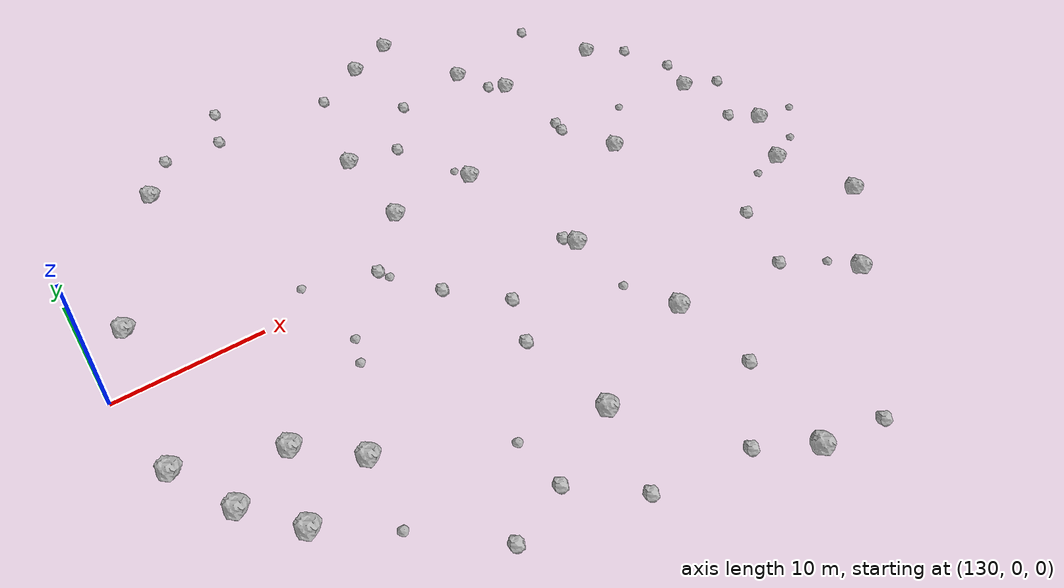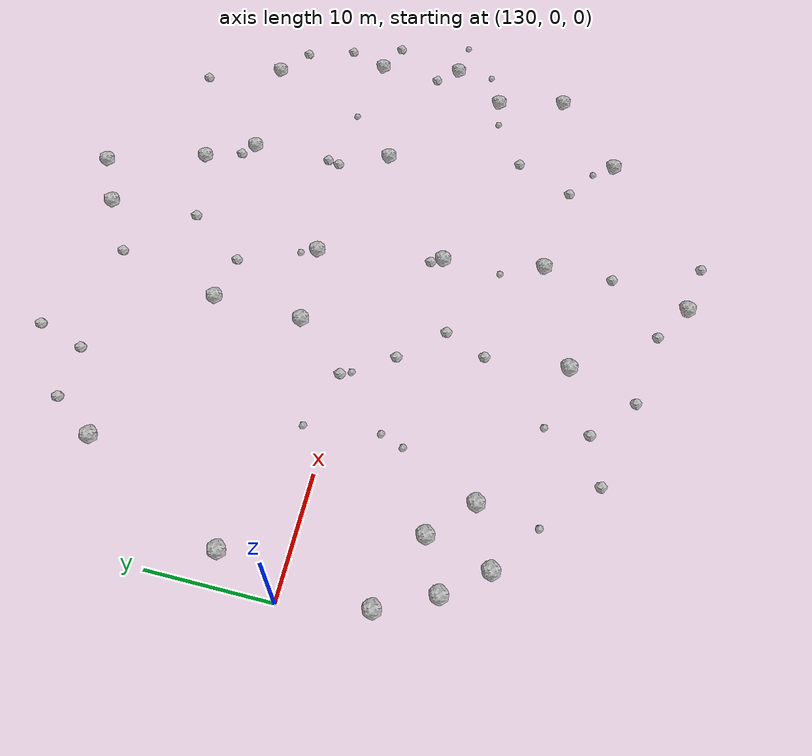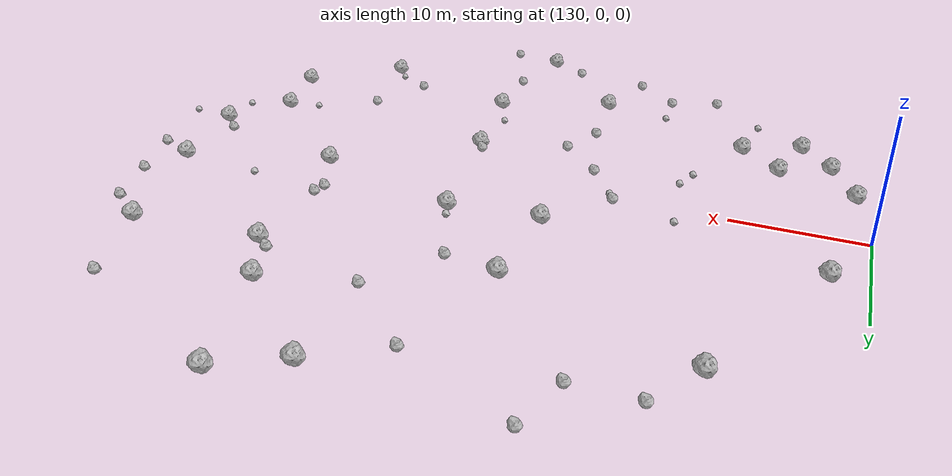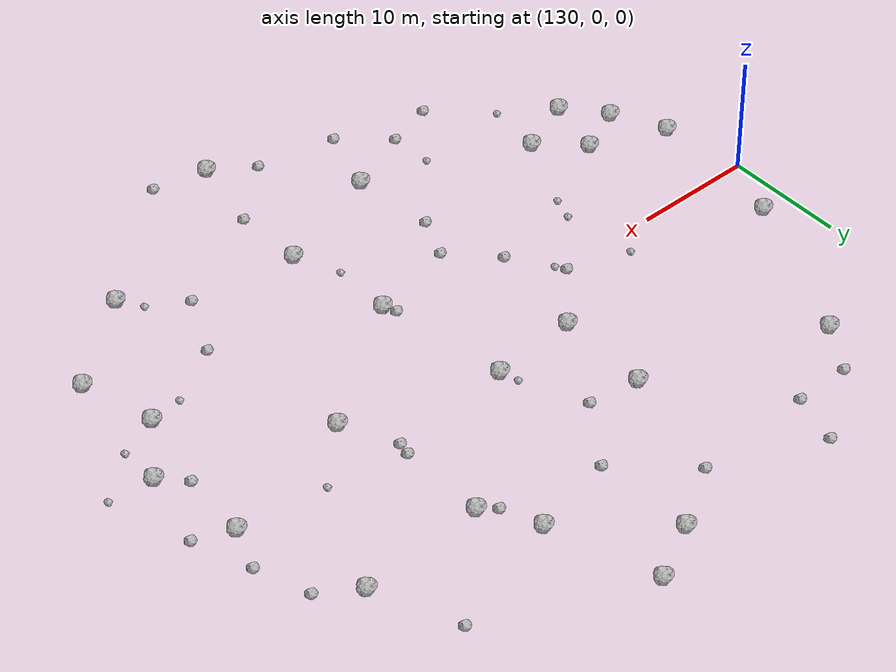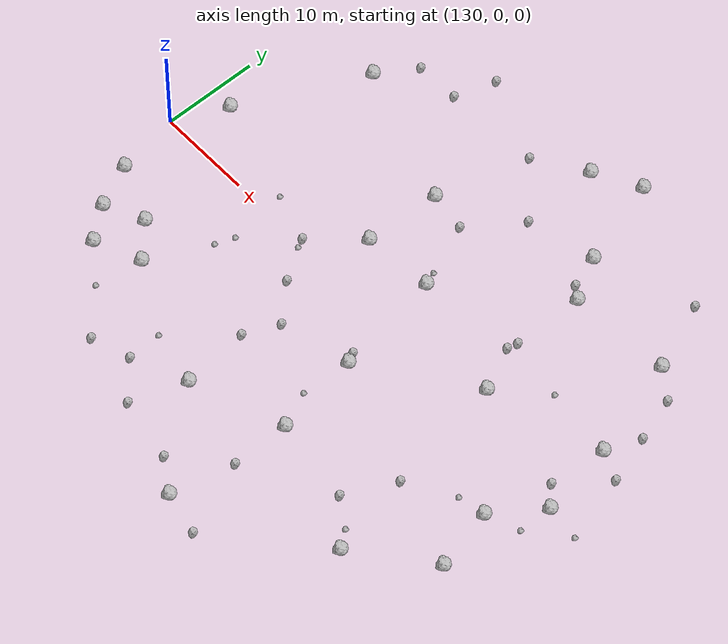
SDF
<sdf version="1.6">
 <world name="default">
  <include><uri>model://sun</uri></include>
  <model name="rock1_4_2">
   <include><uri>model://rock1</uri><pose>153.51750321119994 12.930994290603557 0.5 0 0 0</pose></include>
  </model>
  <model name="rock1_4_3">
   <include><uri>model://rock1</uri><pose>160.4429925743081 5.592748823672288 0.5 0 0 0</pose></include>
  </model>
  <model name="rock1_4_4">
   <include><uri>model://rock1</uri><pose>163.4850192469803 -14.505709180852458 0.5 0 0 0</pose></include>
  </model>
  <model name="rock1_4_5">
   <include><uri>model://rock1</uri><pose>153.88852968461225 -17.934879662585676 0.5 0 0 0</pose></include>
  </model>
  <model name="rock1_4_6">
   <include><uri>model://rock1</uri><pose>184.0519125299344 -13.559188663347989 0.5 0 0 0</pose></include>
  </model>
  <model name="rock1_4_7">
   <include><uri>model://rock1</uri><pose>162.1400318987827 -5.606685945962305 0.5 0 0 0</pose></include>
  </model>
  <model name="rock1_4_8">
   <include><uri>model://rock1</uri><pose>161.99676828696434 -27.12939130318102 0.5 0 0 0</pose></include>
  </model>
  <model name="rock1_4_9">
   <include><uri>model://rock1</uri><pose>186.07094205513613 -2.393332072291475 0.5 0 0 0</pose></include>
  </model>
  <model name="rock1_4_10">
   <include><uri>model://rock1</uri><pose>171.1071005127007 14.939160661312457 0.5 0 0 0</pose></include>
  </model>
  <model name="rock1_4_11">
   <include><uri>model://rock1</uri><pose>140.68866826483745 -12.542120805886118 0.5 0 0 0</pose></include>
  </model>
  <model name="rock1_4_12">
   <include><uri>model://rock1</uri><pose>184.79878202795226 5.3819900094609 0.5 0 0 0</pose></include>
  </model>
  <model name="rock1_4_13">
   <include><uri>model://rock1</uri><pose>182.52885354190124 -7.250850593460413 0.5 0 0 0</pose></include>
  </model>
  <model name="rock1_4_14">
   <include><uri>model://rock1</uri><pose>176.6710043268544 -19.380457841018966 0.5 0 0 0</pose></include>
  </model>
  <model name="rock1_4_15">
   <include><uri>model://rock1</uri><pose>137.38077767115124 -9.350763081952323 0.5 0 0 0</pose></include>
  </model>
  <model name="rock1_4_16">
   <include><uri>model://rock1</uri><pose>181.72231796185514 15.666354773775922 0.5 0 0 0</pose></include>
  </model>
  <model name="rock1_4_17">
   <include><uri>model://rock1</uri><pose>138.80868440071828 18.130853746620907 0.5 0 0 0</pose></include>
  </model>
  <model name="rock1_4_18">
   <include><uri>model://rock1</uri><pose>153.11926537341017 4.976679012297417 0.5 0 0 0</pose></include>
  </model>
  <model name="rock1_4_19">
   <include><uri>model://rock1</uri><pose>161.30576929906596 25.824347613407106 0.5 0 0 0</pose></include>
  </model>
  <model name="rock1_4_20">
   <include><uri>model://rock1</uri><pose>132.645116236559 5.271036742140616 0.5 0 0 0</pose></include>
  </model>
  <model name="rock1_4_21">
   <include><uri>model://rock1</uri><pose>131.2972391113266 -6.796585575036723 0.5 0 0 0</pose></include>
  </model>
  <model name="rock1_4_22">
   <include><uri>model://rock1</uri><pose>172.8307426590053 1.9341311357813602 0.5 0 0 0</pose></include>
  </model>
  <model name="rock1_4_23">
   <include><uri>model://rock1</uri><pose>133.3800705388928 -11.190610486830217 0.5 0 0 0</pose></include>
  </model>
  <model name="rock1_4_24">
   <include><uri>model://rock1</uri><pose>168.67991937154147 19.25056540900391 0.5 0 0 0</pose></include>
  </model>
  <model name="rock1_4_25">
   <include><uri>model://rock1</uri><pose>165.9405905399315 28.31317718359717 0.5 0 0 0</pose></include>
  </model>
  <model name="rock1_4_26">
   <include><uri>model://rock1</uri><pose>135.9501994702964 -14.505327433037392 0.5 0 0 0</pose></include>
  </model>
  <model name="rock2_4_0">
   <include><uri>model://rock2</uri><pose>184.16603297336695 -0.48899467135031927 0.3 0 0 0</pose></include>
  </model>
  <model name="rock2_4_1">
   <include><uri>model://rock2</uri><pose>148.23897442382386 -20.294544915986496 0.3 0 0 0</pose></include>
  </model>
  <model name="rock2_4_2">
   <include><uri>model://rock2</uri><pose>174.84659465630682 -10.542975717096155 0.3 0 0 0</pose></include>
  </model>
  <model name="rock2_4_3">
   <include><uri>model://rock2</uri><pose>151.4240619480141 -3.8398523168976304 0.3 0 0 0</pose></include>
  </model>
  <model name="rock2_4_4">
   <include><uri>model://rock2</uri><pose>172.3124753737349 -15.681594282660527 0.3 0 0 0</pose></include>
  </model>
  <model name="rock2_4_5">
   <include><uri>model://rock2</uri><pose>170.69419369613246 6.416736346693831 0.3 0 0 0</pose></include>
  </model>
  <model name="rock2_4_6">
   <include><uri>model://rock2</uri><pose>158.5369697740125 -24.878915874328115 0.3 0 0 0</pose></include>
  </model>
  <model name="rock2_4_7">
   <include><uri>model://rock2</uri><pose>154.7615676868713 -7.411862027956719 0.3 0 0 0</pose></include>
  </model>
  <model name="rock2_4_8">
   <include><uri>model://rock2</uri><pose>161.5858006225464 -4.589487085283068 0.3 0 0 0</pose></include>
  </model>
  <model name="rock2_4_9">
   <include><uri>model://rock2</uri><pose>147.3544038811494 26.41229660367717 0.3 0 0 0</pose></include>
  </model>
  <model name="rock2_4_10">
   <include><uri>model://rock2</uri><pose>145.9983794869015 22.144100191800263 0.3 0 0 0</pose></include>
  </model>
  <model name="rock2_4_11">
   <include><uri>model://rock2</uri><pose>157.67055527831948 12.296974002601374 0.3 0 0 0</pose></include>
  </model>
  <model name="rock2_4_12">
   <include><uri>model://rock2</uri><pose>184.7605428853158 13.51490005828407 0.3 0 0 0</pose></include>
  </model>
  <model name="rock2_4_13">
   <include><uri>model://rock2</uri><pose>178.90451685962228 22.634399341243558 0.3 0 0 0</pose></include>
  </model>
  <model name="rock2_4_14">
   <include><uri>model://rock2</uri><pose>163.4617324804384 -20.541163637314934 0.3 0 0 0</pose></include>
  </model>
  <model name="rock2_4_15">
   <include><uri>model://rock2</uri><pose>169.7678155429026 15.932391324634288 0.3 0 0 0</pose></include>
  </model>
  <model name="rock2_4_16">
   <include><uri>model://rock2</uri><pose>148.80245125689794 0.3442600386003001 0.3 0 0 0</pose></include>
  </model>
  <model name="rock2_4_17">
   <include><uri>model://rock2</uri><pose>161.51442504670146 17.57258348322369 0.3 0 0 0</pose></include>
  </model>
  <model name="rock2_4_18">
   <include><uri>model://rock2</uri><pose>187.8053376902259 4.114856777994021 0.3 0 0 0</pose></include>
  </model>
  <model name="rock2_4_19">
   <include><uri>model://rock2</uri><pose>170.95214616244402 7.520592732823431 0.3 0 0 0</pose></include>
  </model>
  <model name="rock2_4_20">
   <include><uri>model://rock2</uri><pose>166.45638844810549 -28.108450770085206 0.3 0 0 0</pose></include>
  </model>
  <model name="rock2_4_21">
   <include><uri>model://rock2</uri><pose>144.1866026260229 -21.597379785665137 0.3 0 0 0</pose></include>
  </model>
  <model name="rock2_4_22">
   <include><uri>model://rock2</uri><pose>153.17964136018477 -10.958419041463323 0.3 0 0 0</pose></include>
  </model>
  <model name="rock2_4_23">
   <include><uri>model://rock2</uri><pose>141.32204779328546 22.056899084288716 0.3 0 0 0</pose></include>
  </model>
  <model name="rock2_4_24">
   <include><uri>model://rock2</uri><pose>186.20028621271672 9.002313368592844 0.3 0 0 0</pose></include>
  </model>
  <model name="rock2_4_25">
   <include><uri>model://rock2</uri><pose>156.16673025922913 22.624760864639065 0.3 0 0 0</pose></include>
  </model>
  <model name="rock2_4_26">
   <include><uri>model://rock2</uri><pose>151.88390189055968 -23.597859539416554 0.3 0 0 0</pose></include>
  </model>
  <model name="rock3_4_0">
   <include><uri>model://rock3</uri><pose>185.89953967934343 -5.925308590150252 0.2 0 0 0</pose></include>
  </model>
  <model name="rock3_4_1">
   <include><uri>model://rock3</uri><pose>143.7068909379739 -6.190025693586222 0.2 0 0 0</pose></include>
  </model>
  <model name="rock3_4_2">
   <include><uri>model://rock3</uri><pose>177.31041003184987 6.245429219146267 0.2 0 0 0</pose></include>
  </model>
  <model name="rock3_4_3">
   <include><uri>model://rock3</uri><pose>159.84130200206727 6.979425450507726 0.2 0 0 0</pose></include>
  </model>
  <model name="rock3_4_4">
   <include><uri>model://rock3</uri><pose>139.85963947000369 -17.51005100123994 0.2 0 0 0</pose></include>
  </model>
  <model name="rock3_4_5">
   <include><uri>model://rock3</uri><pose>189.70834621094366 -2.7987354428366693 0.2 0 0 0</pose></include>
  </model>
  <model name="rock3_4_6">
   <include><uri>model://rock3</uri><pose>175.27764176345661 -17.612110247154703 0.2 0 0 0</pose></include>
  </model>
  <model name="rock3_4_7">
   <include><uri>model://rock3</uri><pose>144.42511184203758 -4.249092278364802 0.2 0 0 0</pose></include>
  </model>
  <model name="rock3_4_8">
   <include><uri>model://rock3</uri><pose>149.20586394576532 -0.574326580685085 0.2 0 0 0</pose></include>
  </model>
  <model name="rock3_4_9">
   <include><uri>model://rock3</uri><pose>148.05128473980415 -16.71600039931902 0.2 0 0 0</pose></include>
  </model>
  <model name="rock3_4_10">
   <include><uri>model://rock3</uri><pose>143.66538393846042 1.9712151959572886 0.2 0 0 0</pose></include>
  </model>
  <model name="rock3_4_11">
   <include><uri>model://rock3</uri><pose>179.5890353388145 -7.736526743230854 0.2 0 0 0</pose></include>
  </model>
  <model name="rock3_4_12">
   <include><uri>model://rock3</uri><pose>161.80221393449366 -10.85456779494827 0.2 0 0 0</pose></include>
  </model>
 </world>
</sdf>
